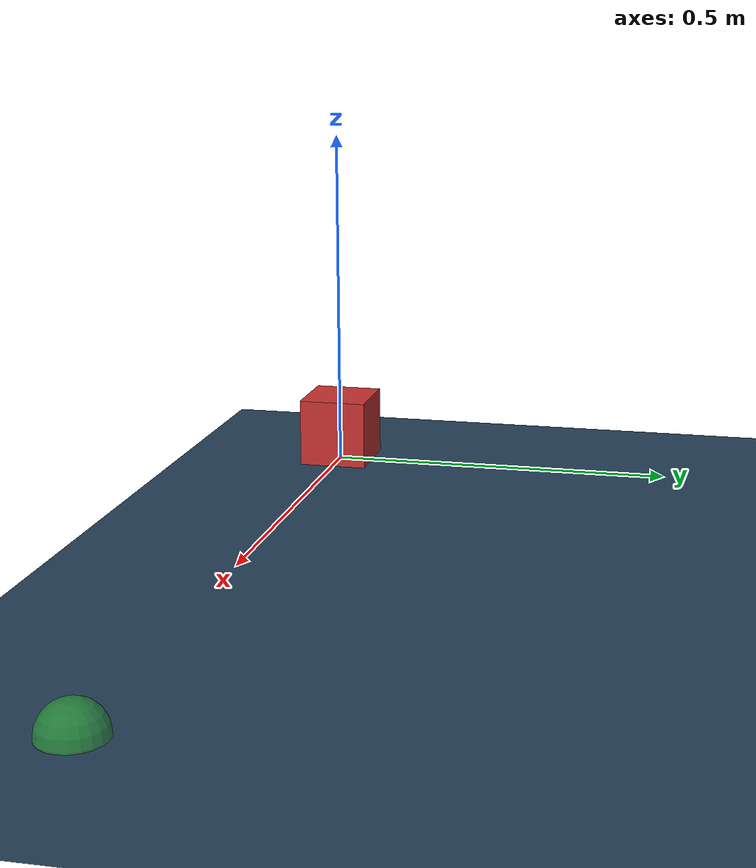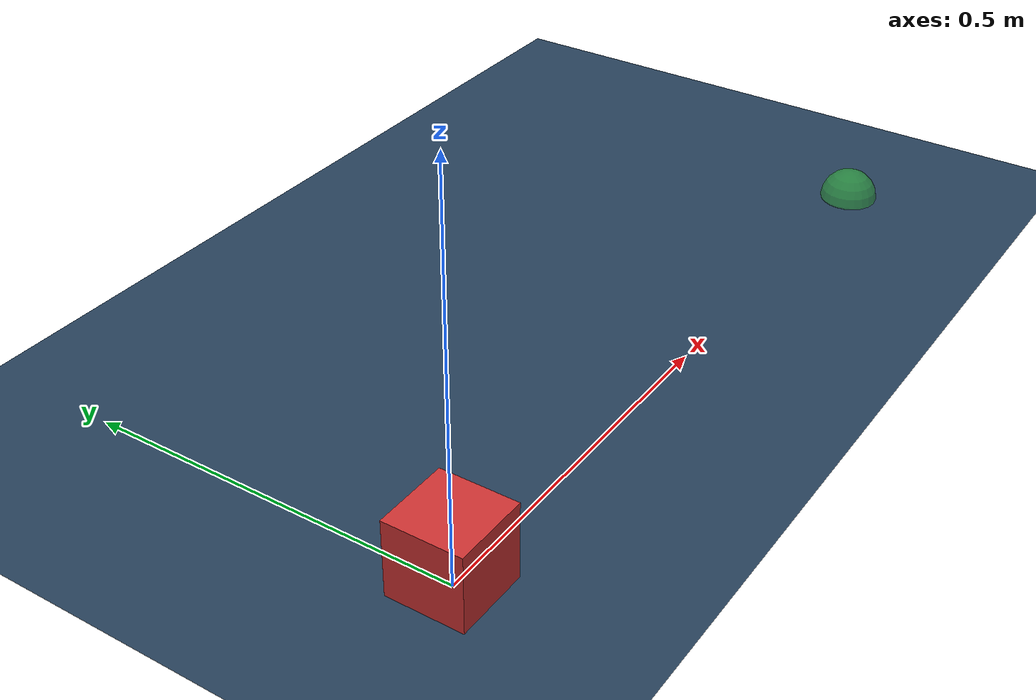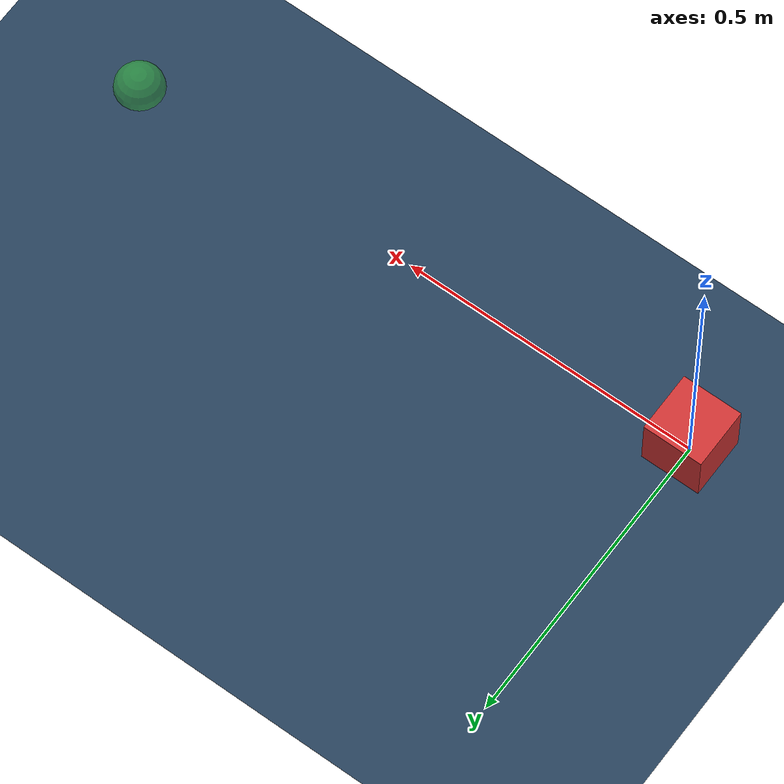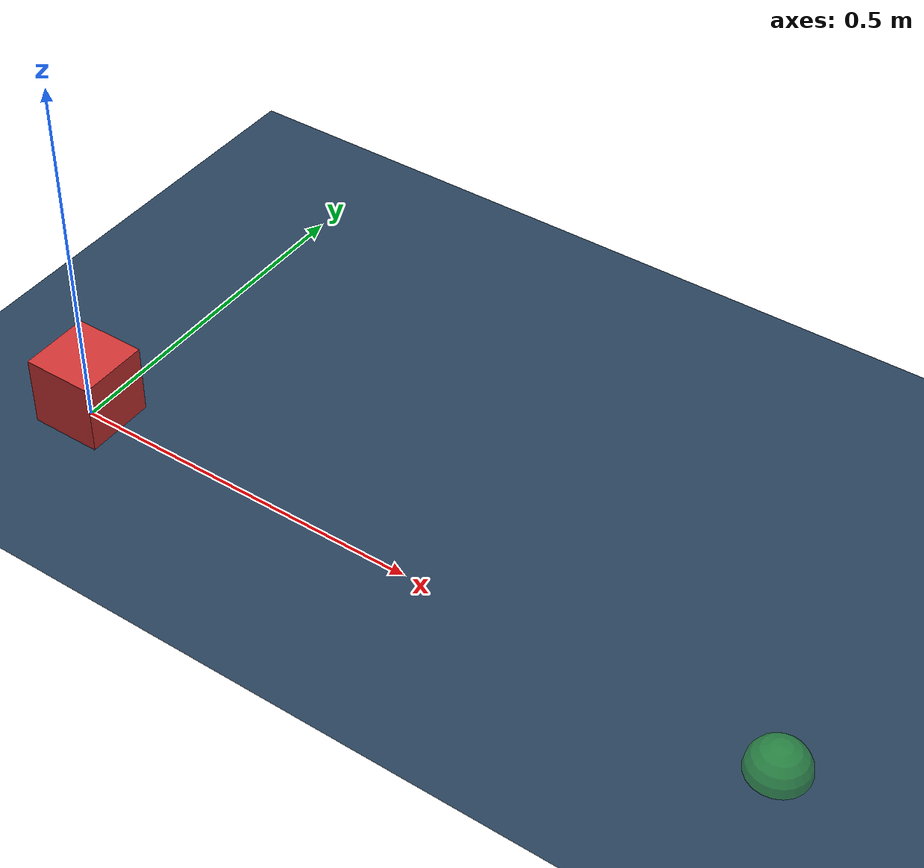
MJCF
<mujoco model="cube_reach_scene">
  <compiler angle="radian"/>
  <option gravity="0 0 -9.81" timestep="0.002"/>

  <visual>
    <headlight diffuse="0.6 0.6 0.6" ambient="0.3 0.3 0.3" specular="0 0 0"/>
    <rgba haze="0.15 0.25 0.35 1"/>
    <global azimuth="-130" elevation="-20"/>
  </visual>

  <asset>
    <texture type="skybox" builtin="gradient" rgb1="0.3 0.5 0.7" rgb2="0 0 0" width="512" height="3072"/>
    <texture type="2d" name="groundplane" builtin="checker" mark="edge"
             rgb1="0.2 0.3 0.4" rgb2="0.1 0.2 0.3" markrgb="0.8 0.8 0.8"
             width="300" height="300"/>
    <material name="groundplane" texture="groundplane" texuniform="true" texrepeat="5 5" reflectance="0.2"/>
    <material name="cube_mat" rgba="0.8 0.2 0.2 1"/>
    <material name="goal_mat" rgba="0.2 0.8 0.2 0.5"/>
  </asset>

  <worldbody>
    <light pos="0 0 1.5" dir="0 0 -1" directional="true"/>
    <geom name="floor" type="plane" size="0 0 0.05" material="groundplane"/>

    <body name="cube" pos="0 0 0.05">
      <joint name="cube_x" type="slide" axis="1 0 0" range="-2 2" damping="1"/>
      <joint name="cube_y" type="slide" axis="0 1 0" range="-2 2" damping="1"/>
      <geom name="cube_geom" type="box" size="0.05 0.05 0.05" mass="1.0" material="cube_mat"/>
      <site name="cube_center" pos="0 0 0" size="0.015" rgba="1 1 1 1"/>
    </body>

    <site name="goal" pos="1 0 0.001" type="sphere" size="0.04" material="goal_mat"/>
  </worldbody>

  <actuator>
    <motor name="move_x" joint="cube_x" gear="1" ctrlrange="-1 1" ctrllimited="true"/>
    <motor name="move_y" joint="cube_y" gear="1" ctrlrange="-1 1" ctrllimited="true"/>
  </actuator>
</mujoco>
